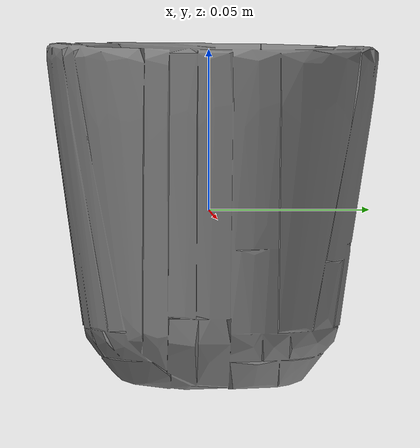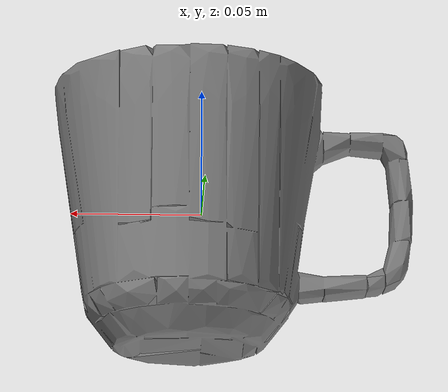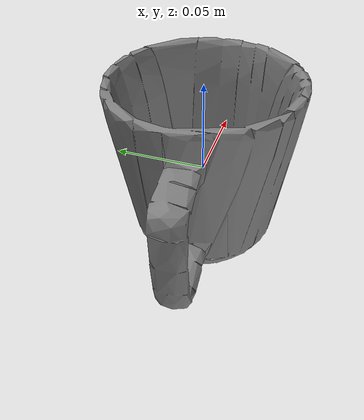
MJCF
<mujoco model="mug_Room_Essentials_Mug_White_Yellow_M">
  <default>
    <default class="visual">
      <geom group="2" type="mesh" contype="0" conaffinity="0" />
    </default>
    <default class="collision">
      <geom group="3" type="mesh" />
    </default>
  </default>
  <asset>
    <mesh file="mug_Room_Essentials_Mug_White_Yellow_M.stl" />
    <mesh file="mug_Room_Essentials_Mug_White_Yellow_M_collision_0.stl" />
    <mesh file="mug_Room_Essentials_Mug_White_Yellow_M_collision_1.stl" />
    <mesh file="mug_Room_Essentials_Mug_White_Yellow_M_collision_2.stl" />
    <mesh file="mug_Room_Essentials_Mug_White_Yellow_M_collision_3.stl" />
    <mesh file="mug_Room_Essentials_Mug_White_Yellow_M_collision_4.stl" />
    <mesh file="mug_Room_Essentials_Mug_White_Yellow_M_collision_5.stl" />
    <mesh file="mug_Room_Essentials_Mug_White_Yellow_M_collision_6.stl" />
    <mesh file="mug_Room_Essentials_Mug_White_Yellow_M_collision_7.stl" />
    <mesh file="mug_Room_Essentials_Mug_White_Yellow_M_collision_8.stl" />
    <mesh file="mug_Room_Essentials_Mug_White_Yellow_M_collision_9.stl" />
    <mesh file="mug_Room_Essentials_Mug_White_Yellow_M_collision_10.stl" />
    <mesh file="mug_Room_Essentials_Mug_White_Yellow_M_collision_11.stl" />
    <mesh file="mug_Room_Essentials_Mug_White_Yellow_M_collision_12.stl" />
    <mesh file="mug_Room_Essentials_Mug_White_Yellow_M_collision_13.stl" />
    <mesh file="mug_Room_Essentials_Mug_White_Yellow_M_collision_14.stl" />
    <mesh file="mug_Room_Essentials_Mug_White_Yellow_M_collision_15.stl" />
  </asset>
  <worldbody>
    <body name="mug_Room_Essentials_Mug_White_Yellow_M">
      <geom mesh="mug_Room_Essentials_Mug_White_Yellow_M" class="visual" />
      <geom mesh="mug_Room_Essentials_Mug_White_Yellow_M_collision_0" class="collision" />
      <geom mesh="mug_Room_Essentials_Mug_White_Yellow_M_collision_1" class="collision" />
      <geom mesh="mug_Room_Essentials_Mug_White_Yellow_M_collision_2" class="collision" />
      <geom mesh="mug_Room_Essentials_Mug_White_Yellow_M_collision_3" class="collision" />
      <geom mesh="mug_Room_Essentials_Mug_White_Yellow_M_collision_4" class="collision" />
      <geom mesh="mug_Room_Essentials_Mug_White_Yellow_M_collision_5" class="collision" />
      <geom mesh="mug_Room_Essentials_Mug_White_Yellow_M_collision_6" class="collision" />
      <geom mesh="mug_Room_Essentials_Mug_White_Yellow_M_collision_7" class="collision" />
      <geom mesh="mug_Room_Essentials_Mug_White_Yellow_M_collision_8" class="collision" />
      <geom mesh="mug_Room_Essentials_Mug_White_Yellow_M_collision_9" class="collision" />
      <geom mesh="mug_Room_Essentials_Mug_White_Yellow_M_collision_10" class="collision" />
      <geom mesh="mug_Room_Essentials_Mug_White_Yellow_M_collision_11" class="collision" />
      <geom mesh="mug_Room_Essentials_Mug_White_Yellow_M_collision_12" class="collision" />
      <geom mesh="mug_Room_Essentials_Mug_White_Yellow_M_collision_13" class="collision" />
      <geom mesh="mug_Room_Essentials_Mug_White_Yellow_M_collision_14" class="collision" />
      <geom mesh="mug_Room_Essentials_Mug_White_Yellow_M_collision_15" class="collision" />
    </body>
  </worldbody>
</mujoco>
